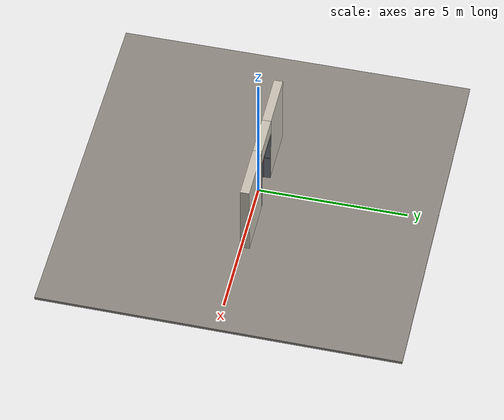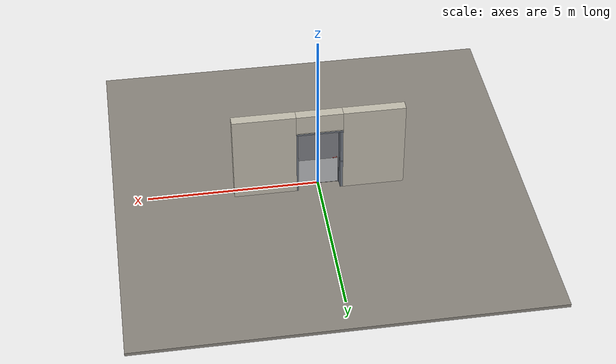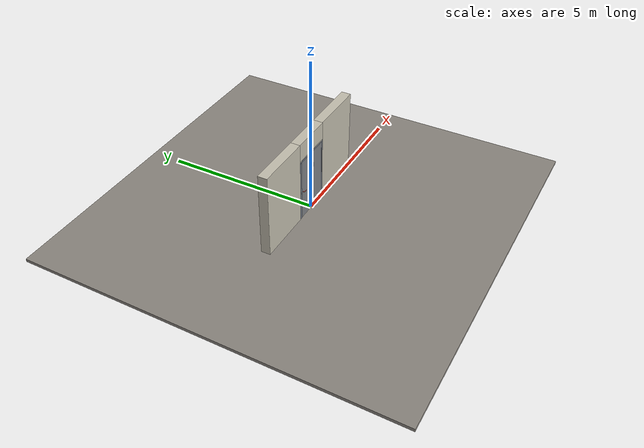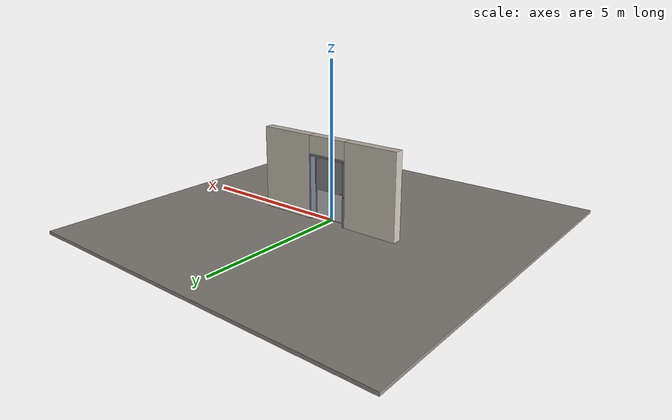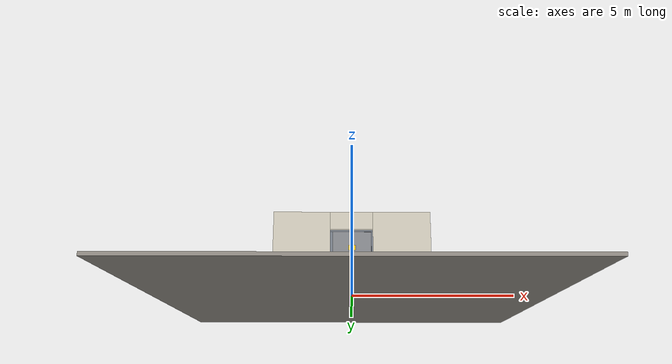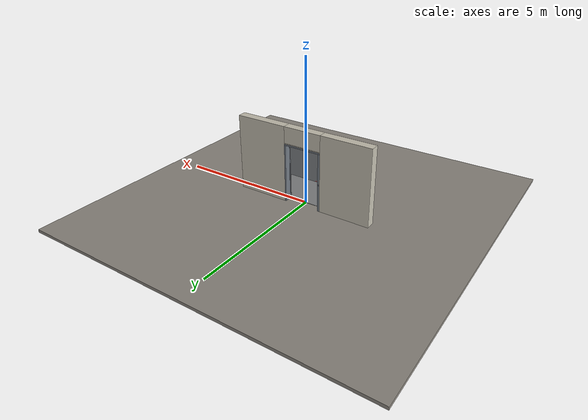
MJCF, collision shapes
<?xml version="1.0" ?>
<mujoco model="db0257_swing_single_full">
  <compiler angle="radian" meshdir="../../hardware" texturedir="../../textures" autolimits="true" inertiafromgeom="false"/>
  <option timestep="0.002" integrator="implicitfast" cone="elliptic" impratio="10" noslip_iterations="3">
    <flag multiccd="enable"/>
  </option>
  <size memory="16M"/>
  <default>
    <geom condim="4" solref="0.005 1" solimp="0.95 0.99 0.001"/>
    <joint solreflimit="0.005 1" solimplimit="0.95 0.99 0.001"/>
    <tendon solreflimit="0.005 1"/>
    <equality solref="0.002 1"/>
  </default>
  <visual>
    <headlight ambient="0.4 0.4 0.4" diffuse="0.7 0.7 0.7" specular="0.2 0.2 0.2"/>
    <quality shadowsize="4096"/>
    <map znear="0.01" zfar="60"/>
  </visual>
  <asset>
    <mesh name="hinge_e22b26c0c1" file="hinge_e22b26c0c1.obj"/>
    <mesh name="hinge_jamb_e1d088f8dc" file="hinge_jamb_e1d088f8dc.obj"/>
    <mesh name="lever_9f02b544cf" file="lever_9f02b544cf.obj"/>
    <material name="mat_floor" rgba="0.55 0.53 0.5 1" specular="0.2" shininess="0.15" reflectance="0"/>
    <material name="mat_wall" rgba="0.78 0.76 0.7 1" specular="0.2" shininess="0.1" reflectance="0"/>
    <material name="mat_leaf" rgba="0.5 0.51 0.53 1" specular="0.23" shininess="0.49" reflectance="0.02"/>
    <material name="mat_leaf_louver" rgba="0.425 0.433 0.451 1" specular="0.2" shininess="0.4" reflectance="0"/>
    <material name="mat_hinge" rgba="0.65 0.66 0.68 1" specular="0.74" shininess="0.5" reflectance="0.36"/>
    <material name="mat_op_nickel_satin" rgba="0.72 0.7 0.66 1" specular="0.8" shininess="0.65" reflectance="0.4"/>
    <material name="mat_trim" rgba="0.85 0.66 0.3 1" specular="0.8" shininess="0.75" reflectance="0.4"/>
    <material name="mat_keyway" rgba="0.05 0.05 0.05 1" specular="0.2" shininess="0.5" reflectance="0"/>
    <material name="mat_bolt" rgba="0.85 0.66 0.3 1" specular="0.8" shininess="0.75" reflectance="0.4"/>
    <material name="mat_frame" rgba="0.45 0.48 0.52 1" specular="0.32" shininess="0.6" reflectance="0.08"/>
    <material name="mat_kick" rgba="0.75 0.76 0.77 1" specular="0.8" shininess="0.65" reflectance="0.4"/>
    <material name="mat_placard" rgba="0.95 0.75 0.05 1" specular="0.2" shininess="0.5" reflectance="0"/>
    <texture name="skybox" type="skybox" builtin="gradient" rgb1="0.6 0.7 0.85" rgb2="0.9 0.92 0.95" width="256" height="256"/>
  </asset>
  <worldbody>
    <light name="sun" pos="1.5 -2.5 4" dir="-0.3 0.5 -0.8" directional="true" diffuse="0.8 0.8 0.8" specular="0.3 0.3 0.3" castshadow="true"/>
    <light name="fill" pos="-1.5 2.5 3" dir="0.3 -0.5 -0.7" directional="true" diffuse="0.35 0.35 0.4" castshadow="false"/>
    <camera name="robot_view" pos="0 -2.421187 1.734312" xyaxes="1 0 0 0 0.26963 0.962964" fovy="52"/>
    <camera name="far_view" pos="0 2.663187 1.734312" xyaxes="-1 0 0 0 -0.26963 0.962964" fovy="52"/>
    <camera name="iso" pos="-1.932062 -2.014438 2.141063" xyaxes="0.741536 -0.670913 0 0.242917 0.268487 0.932151" fovy="46"/>
    <camera name="detail_handle" pos="-0.259 -0.877 1.245" xyaxes="0.97561 0.219512 0 -0.070934 0.315262 0.94635" fovy="38"/>
    <geom name="floor" type="box" size="6 6 0.05" pos="0 0 -0.05" material="mat_floor" group="0" contype="1" conaffinity="1" friction="0.8 0.005 0.0001" density="2400"/>
    <geom name="wall_left" type="box" size="0.9035 0.15 1.35" pos="-1.5965 0.121 1.35" material="mat_wall" group="0" contype="1" conaffinity="1" friction="0.6 0.005 0.0001" density="800"/>
    <geom name="wall_right" type="box" size="0.9185 0.15 1.35" pos="1.5815 0.121 1.35" material="mat_wall" group="0" contype="1" conaffinity="1" friction="0.6 0.005 0.0001" density="800"/>
    <geom name="wall_header" type="box" size="0.678 0.15 0.2875" pos="-0.015 0.121 2.4125" material="mat_wall" group="0" contype="1" conaffinity="1" friction="0.6 0.005 0.0001" density="800"/>
    <geom name="hinge_0_jamb" type="mesh" mesh="hinge_jamb_e1d088f8dc" pos="0.61 -0.029 0.259" quat="0 0 1 0" material="mat_hinge" group="1" contype="0" conaffinity="0" density="7850"/>
    <geom name="hinge_1_jamb" type="mesh" mesh="hinge_jamb_e1d088f8dc" pos="0.61 -0.029 1.025" quat="0 0 1 0" material="mat_hinge" group="1" contype="0" conaffinity="0" density="7850"/>
    <geom name="hinge_2_jamb" type="mesh" mesh="hinge_jamb_e1d088f8dc" pos="0.61 -0.029 1.861" quat="0 0 1 0" material="mat_hinge" group="1" contype="0" conaffinity="0" density="7850"/>
    <geom name="jamb_hinge" type="box" size="0.025 0.15 1.0225" pos="0.638 0.121 1.0225" material="mat_frame" group="0" contype="1" conaffinity="1" friction="0.6 0.005 0.0001" density="300"/>
    <geom name="strike_965_wall_n" type="box" size="0.04 0.13075 0.0183" pos="-0.653 0.14025 0.965" material="mat_frame" group="0" contype="1" conaffinity="1" friction="0.6 0.005 0.0001" density="300"/>
    <geom name="strike_965_wall_p" type="box" size="0.04 0.008 0.0183" pos="-0.653 -0.0175 0.965" material="mat_frame" group="0" contype="1" conaffinity="1" friction="0.6 0.005 0.0001" density="300"/>
    <geom name="strike_965_ramp" type="box" size="0.04 0.018028 0.0183" pos="-0.656282 -0.018312 0.965" quat="0.957092 0 0 -0.289784" material="mat_frame" group="0" contype="1" conaffinity="1" friction="0.12 0.005 0.0001" density="300"/>
    <geom name="strike_965_back" type="box" size="0.0285 0.0095 0.0183" pos="-0.6645 0 0.965" material="mat_frame" group="0" contype="1" conaffinity="1" friction="0.6 0.005 0.0001" density="300"/>
    <geom name="jamb_strike_0" type="box" size="0.04 0.15 0.47335" pos="-0.653 0.121 0.47335" material="mat_frame" group="0" contype="1" conaffinity="1" friction="0.6 0.005 0.0001" density="300"/>
    <geom name="jamb_strike_1" type="box" size="0.04 0.15 0.53085" pos="-0.653 0.121 1.51415" material="mat_frame" group="0" contype="1" conaffinity="1" friction="0.6 0.005 0.0001" density="300"/>
    <geom name="jamb_head" type="box" size="0.678 0.15 0.025" pos="-0.015 0.121 2.07" material="mat_frame" group="0" contype="1" conaffinity="1" friction="0.6 0.005 0.0001" density="300"/>
    <geom name="head_stud" type="box" size="0.678 0.15 0.015" pos="-0.015 0.121 2.11" material="mat_wall" group="0" contype="1" conaffinity="1" friction="0.6 0.005 0.0001" density="500"/>
    <geom name="stop_hinge" type="box" size="0.0055 0.016 1.0225" pos="0.6075 0.0385 1.0225" material="mat_frame" group="0" contype="1" conaffinity="1" friction="0.6 0.005 0.0001" density="300"/>
    <geom name="stop_strike" type="box" size="0.0055 0.016 1.0225" pos="-0.6075 0.0385 1.0225" material="mat_frame" group="0" contype="1" conaffinity="1" friction="0.6 0.005 0.0001" density="300"/>
    <geom name="stop_head" type="box" size="0.613 0.016 0.0055" pos="0 0.0385 2.0395" material="mat_frame" group="0" contype="1" conaffinity="1" friction="0.6 0.005 0.0001" density="300"/>
    <site name="approach_point" pos="0 -1.5 0" quat="1 0 0 0" size="0.05" rgba="0.2 0.9 0.2 0.5" group="4"/>
    <site name="goal_point" pos="0 1.5 0" quat="1 0 0 0" size="0.05" rgba="0.2 0.9 0.2 0.5" group="4"/>
    <site name="door_plane_center" pos="0 0 1.0225" quat="1 0 0 0" size="0.02" rgba="0.2 0.9 0.2 0.5" group="4"/>
    <body name="leaf" pos="0.613 0 0">
      <inertial pos="-0.60676 0.00381 0.928039" mass="66.813003" quat="0.501933 -0.49968 -0.497569 -0.500807" diaginertia="8.300875965 22.802369168 31.076042881"/>
      <joint name="leaf_hinge" type="hinge" axis="0 0 1" pos="-0.003 -0.029 0" limited="true" range="0 1.919862" damping="0.860319" frictionloss="2.039469" armature="0.02"/>
      <geom name="leaf_slab" type="box" size="0.6095 0.022 1.016" pos="-0.6125 0 1.025" material="mat_leaf" group="0" contype="1" conaffinity="1" friction="0.42 0.005 0.0001" density="1"/>
      <geom name="leaf_louver_0" type="box" size="0.30475 0.002 0.02625" pos="-0.6125 0 0.284" quat="0.953717 0.300706 0 0" material="mat_leaf_louver" group="1" contype="0" conaffinity="0" density="1"/>
      <geom name="leaf_louver_1" type="box" size="0.30475 0.002 0.02625" pos="-0.6125 0 0.334" quat="0.953717 0.300706 0 0" material="mat_leaf_louver" group="1" contype="0" conaffinity="0" density="1"/>
      <geom name="leaf_louver_2" type="box" size="0.30475 0.002 0.02625" pos="-0.6125 0 0.384" quat="0.953717 0.300706 0 0" material="mat_leaf_louver" group="1" contype="0" conaffinity="0" density="1"/>
      <geom name="leaf_louver_3" type="box" size="0.30475 0.002 0.02625" pos="-0.6125 0 0.434" quat="0.953717 0.300706 0 0" material="mat_leaf_louver" group="1" contype="0" conaffinity="0" density="1"/>
      <geom name="leaf_louver_4" type="box" size="0.30475 0.002 0.02625" pos="-0.6125 0 0.484" quat="0.953717 0.300706 0 0" material="mat_leaf_louver" group="1" contype="0" conaffinity="0" density="1"/>
      <geom name="leaf_louver_5" type="box" size="0.30475 0.002 0.02625" pos="-0.6125 0 0.534" quat="0.953717 0.300706 0 0" material="mat_leaf_louver" group="1" contype="0" conaffinity="0" density="1"/>
      <geom name="leaf_louver_6" type="box" size="0.30475 0.002 0.02625" pos="-0.6125 0 0.584" quat="0.953717 0.300706 0 0" material="mat_leaf_louver" group="1" contype="0" conaffinity="0" density="1"/>
      <geom name="leaf_louver_7" type="box" size="0.30475 0.002 0.02625" pos="-0.6125 0 0.634" quat="0.953717 0.300706 0 0" material="mat_leaf_louver" group="1" contype="0" conaffinity="0" density="1"/>
      <geom name="leaf_louver_8" type="box" size="0.30475 0.002 0.02625" pos="-0.6125 0 0.684" quat="0.953717 0.300706 0 0" material="mat_leaf_louver" group="1" contype="0" conaffinity="0" density="1"/>
      <geom name="hinge_0" type="mesh" mesh="hinge_e22b26c0c1" pos="-0.003 -0.029 0.259" quat="0 0 1 0" material="mat_hinge" group="1" contype="0" conaffinity="0" density="7850"/>
      <geom name="hinge_1" type="mesh" mesh="hinge_e22b26c0c1" pos="-0.003 -0.029 1.025" quat="0 0 1 0" material="mat_hinge" group="1" contype="0" conaffinity="0" density="7850"/>
      <geom name="hinge_2" type="mesh" mesh="hinge_e22b26c0c1" pos="-0.003 -0.029 1.861" quat="0 0 1 0" material="mat_hinge" group="1" contype="0" conaffinity="0" density="7850"/>
      <geom name="leaf_latch_bolt_faceplate" type="box" size="0.0006 0.014 0.0283" pos="-1.2214 0 0.965" material="mat_bolt" group="1" contype="0" conaffinity="0" density="8500"/>
      <geom name="armor_plate" type="box" size="0.5795 0.0008 0.45" pos="-0.6125 0.0228 0.469" material="mat_kick" group="2" contype="0" conaffinity="0" density="7900"/>
      <geom name="warning_placard" type="box" size="0.11 0.001 0.08" pos="-0.6125 -0.023 1.533" material="mat_placard" group="2" contype="0" conaffinity="0" density="1000"/>
      <site name="leaf_edge_mid" pos="-1.222 0 1.016" quat="1 0 0 0" size="0.02" rgba="0.2 0.9 0.2 0.5" group="4"/>
      <body name="leaf_handle" pos="-1.152 0 0.965">
        <inertial pos="0.027758 0.000956 0" mass="1.005882" quat="0.71178 0 0 -0.702403" diaginertia="0.001794484 0.003806886 0.005422316"/>
        <joint name="leaf_handle_hinge" type="hinge" axis="0 1 0" limited="true" range="0 0.96" damping="0.245633" frictionloss="0.048" stiffness="1.2" springref="-0.458333" armature="0.01"/>
        <geom name="leaf_handle_spindle" type="cylinder" size="0.006 0.03" pos="0 0 0" quat="0.707107 -0.707107 0 0" material="mat_op_nickel_satin" group="1" contype="0" conaffinity="0" density="7850"/>
        <geom name="leaf_handle_lever_n" type="mesh" mesh="lever_9f02b544cf" pos="0 -0.022 0" quat="0 0 -0.707107 0.707107" material="mat_op_nickel_satin" group="1" contype="0" conaffinity="0" density="3000"/>
        <geom name="leaf_handle_lever_col_n" type="capsule" size="0.0095 0.053" pos="0.0625 -0.077 0" quat="0.707107 0 0.707107 0" material="mat_op_nickel_satin" group="3" contype="1" conaffinity="1" rgba="0.8 0.3 0.3 0.25" friction="0.7 0.01 0.0001" density="3000"/>
        <geom name="leaf_handle_hub_col_n" type="cylinder" size="0.012 0.022" pos="0 -0.052 0" quat="0.707107 -0.707107 0 0" material="mat_op_nickel_satin" group="3" contype="1" conaffinity="1" rgba="0.8 0.3 0.3 0.25" friction="0.6 0.005 0.0001" density="3000"/>
        <geom name="leaf_handle_turn_button_n" type="cylinder" size="0.006 0.005" pos="0 -0.0875 0" quat="0.707107 -0.707107 0 0" material="mat_trim" group="1" contype="0" conaffinity="0" density="7100"/>
        <geom name="leaf_handle_lever_p" type="mesh" mesh="lever_9f02b544cf" pos="0 0.022 0" quat="0 0 0.707107 0.707107" material="mat_op_nickel_satin" group="1" contype="0" conaffinity="0" density="3000"/>
        <geom name="leaf_handle_lever_col_p" type="capsule" size="0.0095 0.053" pos="0.0625 0.077 0" quat="0.707107 0 0.707107 0" material="mat_op_nickel_satin" group="3" contype="1" conaffinity="1" rgba="0.8 0.3 0.3 0.25" friction="0.7 0.01 0.0001" density="3000"/>
        <geom name="leaf_handle_hub_col_p" type="cylinder" size="0.012 0.022" pos="0 0.052 0" quat="0.707107 -0.707107 0 0" material="mat_op_nickel_satin" group="3" contype="1" conaffinity="1" rgba="0.8 0.3 0.3 0.25" friction="0.6 0.005 0.0001" density="3000"/>
        <geom name="leaf_handle_cylinder_p" type="cylinder" size="0.0085 0.006" pos="0 0.0845 0" quat="0.707107 -0.707107 0 0" material="mat_trim" group="1" contype="0" conaffinity="0" density="7100"/>
        <geom name="leaf_handle_keyway_p" type="box" size="0.0012 0.0008 0.006" pos="0 0.091 0" material="mat_keyway" group="1" contype="0" conaffinity="0" density="7100"/>
        <site name="leaf_handle_grip_n" pos="0.1 -0.077 0" quat="1 0 0 0" size="0.012" rgba="0.2 0.9 0.2 0.5" group="4"/>
        <site name="leaf_handle_grip_p" pos="0.1 0.077 0" quat="1 0 0 0" size="0.012" rgba="0.2 0.9 0.2 0.5" group="4"/>
      </body>
      <body name="leaf_latch_bolt" pos="-1.222 0 0.965">
        <inertial pos="0.0055 0 0" mass="0.074627" quat="0.92388 0.382683 0 0" diaginertia="0.000002271 0.000013255 0.000013255"/>
        <joint name="leaf_latch_bolt_slide" type="slide" axis="1 0 0" limited="true" range="0 0.019" damping="2" frictionloss="0.3" stiffness="600" springref="-0.01" armature="0.1"/>
        <geom name="leaf_latch_bolt_capsule" type="capsule" size="0.008 0.0165" pos="0.0055 0 0" quat="0.707107 0 -0.707107 0" material="mat_bolt" group="0" contype="1" conaffinity="1" friction="0.2 0.005 0.0001" density="8500"/>
      </body>
    </body>
  </worldbody>
  <tendon>
    <fixed name="leaf_latch_bolt_coupling" limited="true" range="0 10">
      <joint joint="leaf_latch_bolt_slide" coef="1"/>
      <joint joint="leaf_handle_hinge" coef="-0.020879"/>
    </fixed>
  </tendon>
  <sensor>
    <jointpos name="leaf_hinge_pos" joint="leaf_hinge"/>
    <jointvel name="leaf_hinge_vel" joint="leaf_hinge"/>
    <jointpos name="leaf_handle_hinge_pos" joint="leaf_handle_hinge"/>
    <jointvel name="leaf_handle_hinge_vel" joint="leaf_handle_hinge"/>
    <jointpos name="leaf_latch_bolt_slide_pos" joint="leaf_latch_bolt_slide"/>
    <jointvel name="leaf_latch_bolt_slide_vel" joint="leaf_latch_bolt_slide"/>
  </sensor>
</mujoco>
